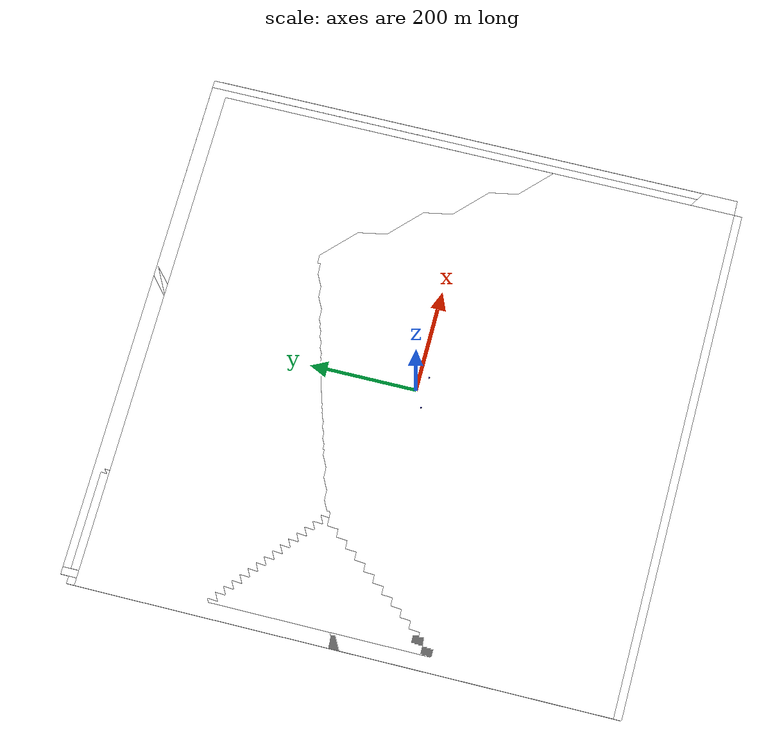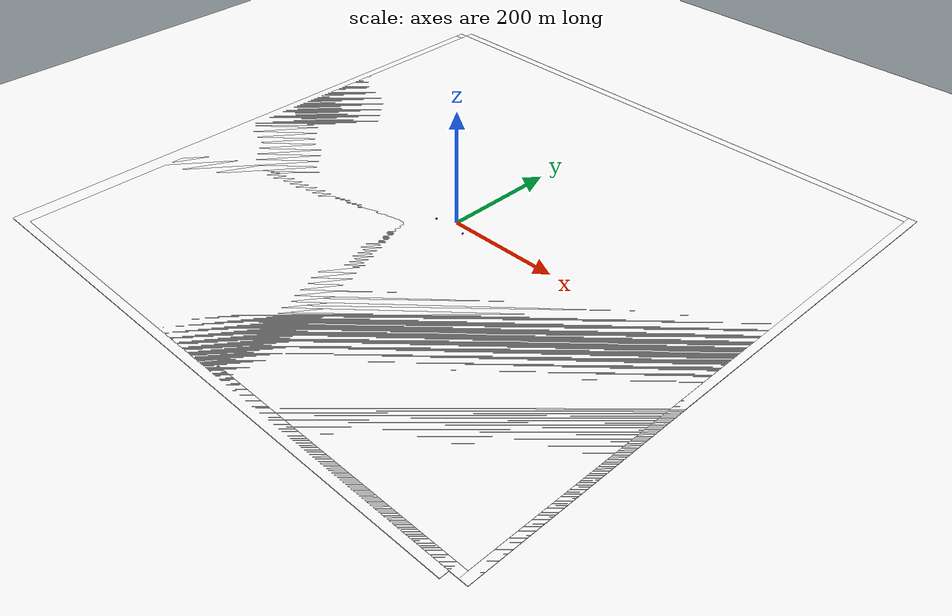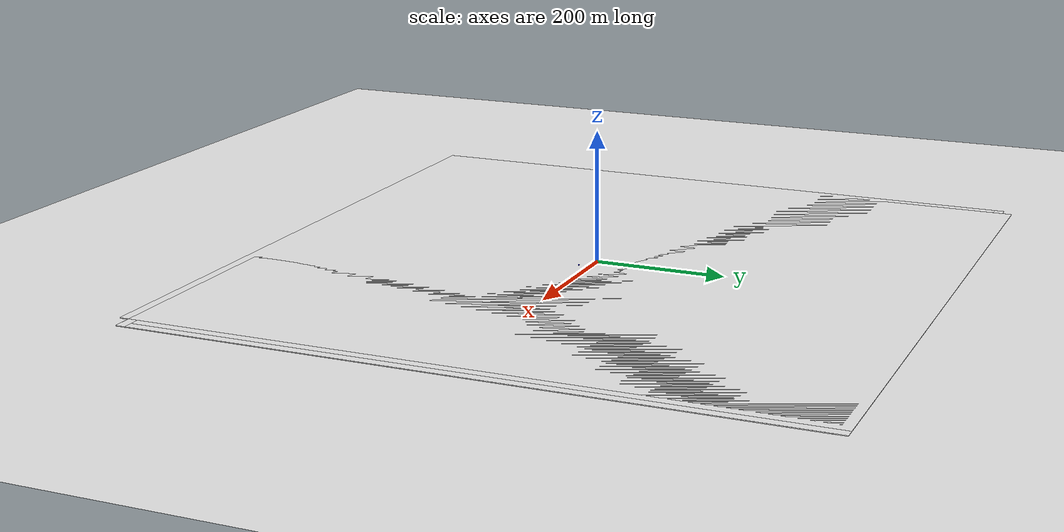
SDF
<sdf version="1.9">
 <world name="forestfire">
  <physics type="ode">
   <max_step_size>0.004</max_step_size>
   <real_time_factor>1.0</real_time_factor>
   <real_time_update_rate>250</real_time_update_rate>
  </physics>
  <gravity>0 0 -9.8</gravity>
  <magnetic_field>6e-06 2.3e-05 -4.2e-05</magnetic_field>
  <atmosphere type="adiabatic"/>
  <scene>
   <grid>false</grid>
   <ambient>0.4 0.4 0.4 1</ambient>
   <background>0.7 0.7 0.7 1</background>
   <shadows>true</shadows>
  </scene>
  <plugin filename="gz-sim-physics-system" name="gz::sim::systems::Physics"/>
  <plugin filename="gz-sim-user-commands-system" name="gz::sim::systems::UserCommands"/>
  <plugin filename="gz-sim-scene-broadcaster-system" name="gz::sim::systems::SceneBroadcaster"/>
  <plugin filename="gz-sim-particle-emitter-system" name="gz::sim::systems::ParticleEmitter"/>
  <plugin filename="gz-sim-sensors-system" name="gz::sim::systems::Sensors">
   <render_engine>ogre2</render_engine>
  </plugin>
  <plugin filename="gz-sim-imu-system" name="gz::sim::systems::Imu"/>
  <plugin filename="gz-sim-air-pressure-system" name="gz::sim::systems::AirPressure"/>
  <plugin filename="gz-sim-magnetometer-system" name="gz::sim::systems::Magnetometer"/>
  <plugin filename="gz-sim-navsat-system" name="gz::sim::systems::NavSat"/>
  <include>
   <uri>https://fuel.ignitionrobotics.org/1.0/hexarotor/models/grasspatch</uri>
   <name>grasspatch</name>
   <pose>2.71574 -2.80395 0 0 -0 0.006057</pose>
  </include>
  <include>
   <uri>https://fuel.ignitionrobotics.org/1.0/hexarotor/models/grasspatch</uri>
   <name>grasspatch_0</name>
   <pose>-12.2297 -2.64582 0 0 -0 0</pose>
  </include>
  <include>
   <uri>https://fuel.ignitionrobotics.org/1.0/hexarotor/models/grasspatch</uri>
   <name>grasspatch_1</name>
   <pose>2.62754 12.1062 0 0 -0 0</pose>
  </include>
  <include>
   <uri>https://fuel.ignitionrobotics.org/1.0/hexarotor/models/grasspatch</uri>
   <name>grasspatch_2</name>
   <pose>-12.0931 11.9289 0 0 -0 0</pose>
  </include>
  <include>
   <uri>https://fuel.ignitionrobotics.org/1.0/hexarotor/models/grasspatch</uri>
   <name>grasspatch_3</name>
   <pose>16.9776 12.1962 0 0 -0 0</pose>
  </include>
  <include>
   <uri>https://fuel.ignitionrobotics.org/1.0/hexarotor/models/grasspatch</uri>
   <name>grasspatch_4</name>
   <pose>2.28684 26.938 0 0 -0 0</pose>
  </include>
  <include>
   <uri>https://fuel.ignitionrobotics.org/1.0/hexarotor/models/grasspatch</uri>
   <name>grasspatch_5</name>
   <pose>16.5899 26.9995 0 0 -0 0</pose>
  </include>
  <include><uri>model://firemodel</uri><name>fire_tree_11</name><pose>10.0031 4.69601 4.0 0 0 0</pose></include>
  <include><uri>model://firemodel</uri><name>fire_tree_12</name><pose>9.38057 2.24489 4.0 0 0 0</pose></include>
  <include>
   <uri>model://firemodel</uri>
   <name>fire_tree_13</name>
   <pose>8.95187 -2.43736 4.0 0 0 0</pose>
  </include>
  <include>
   <uri>model://firemodel</uri>
   <name>fire_tree_14</name>
   <pose>9.54099 -5.29967 4.0 0 0 0</pose>
  </include>
  <include>
   <uri>model://firemodel</uri>
   <name>fire_tree_15</name>
   <pose>8.56424 -7.36834 4.0 0 0 0</pose>
  </include>
  <include>
   <uri>model://firemodel</uri>
   <name>fire_tree_16</name>
   <pose>7.04987 -9.30259 4.0 0 0 0</pose>
  </include>
  <include>
   <uri>model://firemodel</uri>
   <name>fire_tree_17</name>
   <pose>4.64341 -9.56548 4.0 0 0 0</pose>
  </include>
  <include>
   <uri>model://firemodel</uri>
   <name>fire_tree_18</name>
   <pose>2.39497 -9.53658 4.0 0 0 0</pose>
  </include>
  <include>
   <uri>model://firemodel</uri>
   <name>fire_tree_19</name>
   <pose>-0.978211 -9.12685 4.0 0 0 0</pose>
  </include>
  <include>
   <uri>model://firemodel</uri>
   <name>fire_tree_20</name>
   <pose>-6.60386 -9.4906 4.0 0 0 0</pose>
  </include>
  <include>
   <uri>model://firemodel</uri>
   <name>fire_tree_21</name>
   <pose>-11.7872 -9.60952 4.0 0 0 0</pose>
  </include>
  <include>
   <uri>model://firemodel</uri>
   <name>fire_tree_19_1</name>
   <pose>-17.6272 5.0484 4.0 0 0 0</pose>
  </include>
  <include>
   <uri>model://firemodel</uri>
   <name>fire_tree_19_2</name>
   <pose>-18.7952 -4.79736 4.0 0 0 0</pose>
  </include>
  <include>
   <uri>model://firemodel</uri>
   <name>fire_tree_19_3</name>
   <pose>-18.6571 13.5589 4.0 0 0 0</pose>
  </include>
  <include>
   <uri>model://firemodel</uri>
   <name>fire_tree_19_4</name>
   <pose>-13.7446 18.3234 4.0 0 0 0</pose>
  </include>
  <include>
   <uri>model://firemodel</uri>
   <name>fire_tree_19_5</name>
   <pose>20.1207 7.17708 4.0 0 0 0</pose>
  </include>
  <include>
   <uri>model://firemodel</uri>
   <name>fire_tree_19_6</name>
   <pose>-3.71164 21.6207 4.0 0 0 0</pose>
  </include>
  <include>
   <uri>model://firemodel</uri>
   <name>fire_tree_19_7</name>
   <pose>-7.45162 17.9798 4.0 0 0 0</pose>
  </include>
  <include>
   <uri>model://firemodel</uri>
   <name>fire_tree_19_8</name>
   <pose>-3.88653 25.1364 4.0 0 0 0</pose>
  </include>
  <include>
   <uri>model://firemodel</uri>
   <name>fire_tree_19_9</name>
   <pose>-4.09489 29.0163 4.0 0 0 0</pose>
  </include>
  <include>
   <uri>model://firemodel</uri>
   <name>fire_tree_19_10</name>
   <pose>21.3008 12.6766 4.0 0 0 0</pose>
  </include>
  <include>
   <uri>model://firemodel</uri>
   <name>fire_tree_19_11</name>
   <pose>20.1494 19.5156 4.0 0 0 0</pose>
  </include>
  <include>
   <uri>model://firemodel</uri>
   <name>fire_tree_19_12</name>
   <pose>13.1837 8.1871 4.0 0 0 0</pose>
  </include>
  <include>
   <uri>model://firemodel</uri>
   <name>fire_tree_19_13</name>
   <pose>20.0557 23.4209 4.0 0 0 0</pose>
  </include>
  <include>
   <uri>model://firemodel</uri>
   <name>fire_tree_19_14</name>
   <pose>20.8101 27.2073 4.0 0 0 0</pose>
  </include>
  <include>
   <uri>model://firemodel</uri>
   <name>fire_tree_19_15</name>
   <pose>18.508 32.5244 4.0 0 0 0</pose>
  </include>
  <include>
   <uri>model://firemodel</uri>
   <name>fire_tree_19_16</name>
   <pose>12.3362 33.1989 4.0 0 0 0</pose>
  </include>
  <include>
   <uri>model://firemodel</uri>
   <name>fire_tree_19_17</name>
   <pose>7.92068 33.4253 4.0 0 0 0</pose>
  </include>
  <include>
   <uri>model://firemodel</uri>
   <name>fire_tree_19_18</name>
   <pose>4.19562 33.3749 4.0 0 0 0</pose>
  </include>
  <include>
   <uri>model://firemodel</uri>
   <name>fire_tree_19_19</name>
   <pose>-3.1997 32.8927 4.0 0 0 0</pose>
  </include>
  <include>
   <uri>model://ground_station</uri>
   <name>ground_station_1</name>
   <pose>0.0 34.64 0 0 0 0</pose>
  </include>
  <include>
   <uri>model://ground_station</uri>
   <name>ground_station_2</name>
   <pose>-30.0 -17.32 0 0 0 0</pose>
  </include>
  <include>
   <uri>model://ground_station</uri>
   <name>ground_station_3</name>
   <pose>30.0 -17.32 0 0 0 0</pose>
  </include>
  <light name="sunUTC" type="directional">
   <pose>0 0 500 0 -0 0</pose>
   <intensity>1</intensity>
   <direction>0.001 0.625 -0.78</direction>
   <diffuse>0.904 0.904 0.904 1</diffuse>
   <specular>0.271 0.271 0.271 1</specular>
   <attenuation><range>2000</range><linear>0</linear><constant>1</constant><quadratic>0</quadratic></attenuation>
   <spot><inner_angle>0</inner_angle><outer_angle>0</outer_angle><falloff>0</falloff></spot>
  </light>
  <spherical_coordinates>
   <surface_model>EARTH_WGS84</surface_model>
   <world_frame_orientation>ENU</world_frame_orientation>
   <latitude_deg>47.397971057728974</latitude_deg>
   <longitude_deg>8.546163739800146</longitude_deg>
   <elevation>0</elevation>
  </spherical_coordinates>
 </world>
</sdf>

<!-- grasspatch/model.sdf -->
<sdf version='1.4'>
  <model name='grasspatch'>
    <static>true</static>
    <link name='link'>
      <collision name='collision'>
        <pose>0 0 0 0 0 0</pose>
        <geometry>
          <plane>
            <normal>0 0 1</normal>
            <size>1000 1000</size>
          </plane>
        </geometry>
        <surface>
          <friction>
            <ode>
              <mu>0.5</mu>
              <mu2>.5</mu2>
            </ode>
          </friction>
        </surface>
      </collision>

      <visual name='visual_s10'>
        <pose>0 0 0 0 0 0</pose>
        <cast_shadows>false</cast_shadows>
        <geometry>
          <plane>
            <normal>0 0 1</normal>
            <size>1000 1000</size>
          </plane>
        </geometry>
          <material>
         <diffuse>1.0 1.0 1.0</diffuse>
          <specular>1.0 1.0 1.0</specular>
		  <pbr>
			<metal>
			   <albedo_map>materials/textures/grass_dry.png</albedo_map>
			   <normal_map>materials/textures/grass_dry.png</normal_map>
			</metal>
		  </pbr>
		</material>
      </visual>

    </link>
  </model>
</sdf>

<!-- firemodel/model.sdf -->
<sdf version="1.9">
  <model name="firemodel">
    <static>true</static>

    <link name="link">

      <particle_emitter name="fire_emitter" type="point">
        <emitting>true</emitting>
        <pose>0 0 0.3 0 -1.5707 0</pose>
        <size>0.5 0.5 0.5</size>
        <particle_size>0.8 0.8 0.8</particle_size>
        <lifetime>2</lifetime>
        <min_velocity>0.3</min_velocity>
        <max_velocity>0.8</max_velocity>
        <rate>15</rate>
        <scale_rate>1.0</scale_rate>
        <material>
          <diffuse>1.0 0.5 0.0</diffuse>
          <specular>1.0 0.3 0.0</specular>
          <pbr>
            <metal>
              <albedo_map>model://firemodel/materials/textures/fire_transparent.png</albedo_map>
            </metal>
          </pbr>
        </material>
      </particle_emitter>
    </link>
  </model>
</sdf>

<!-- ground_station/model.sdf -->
<sdf version="1.9">
    <model name="ground_station">
        <static>true</static>

        <link name="link">
            <visual name="visual">
                <geometry>
                    <box>
                        <size>2 2 4</size>
                    </box>
                </geometry>
                <material>
                    <ambient>0 0 1 1</ambient>
                    <diffuse>0 0 1 1</diffuse>
                </material>
            </visual>
        </link>
    </model>
</sdf>
